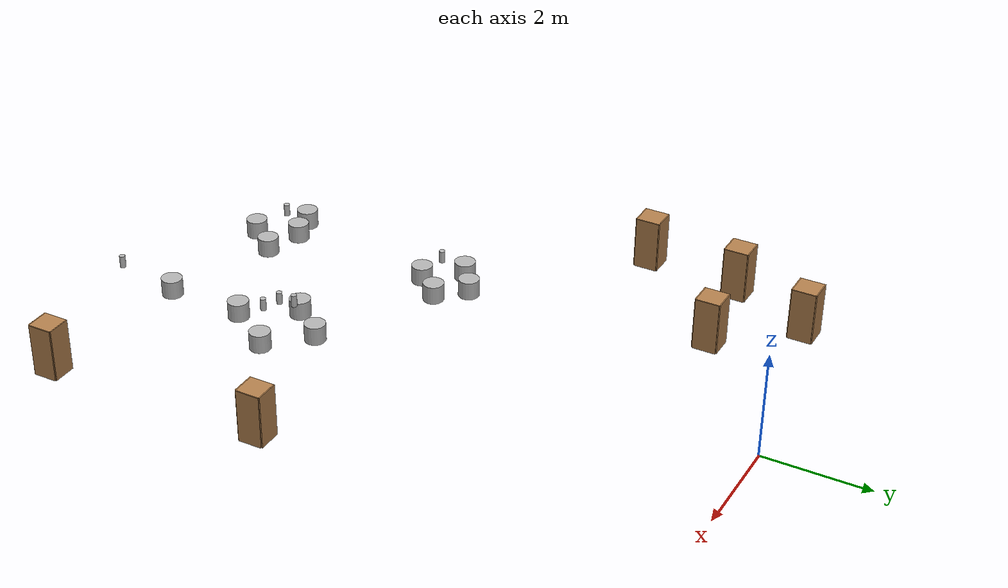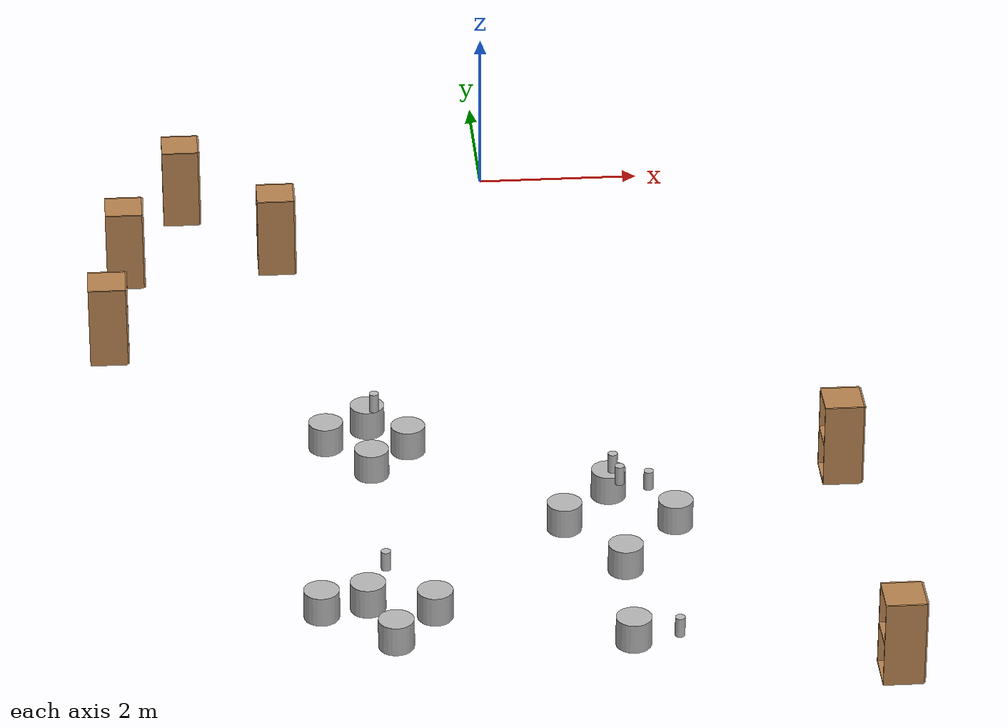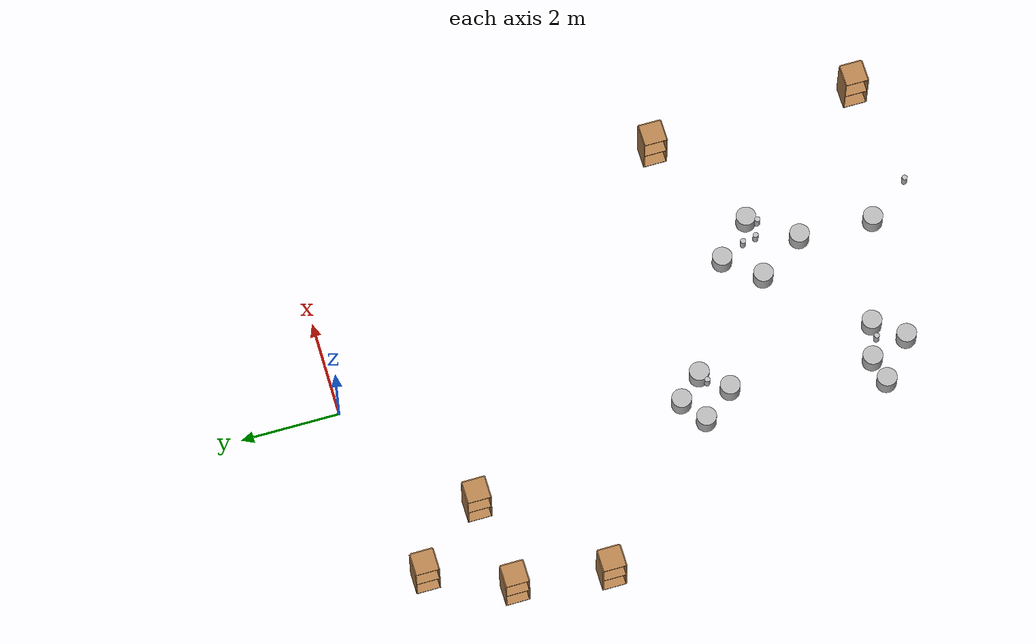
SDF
<sdf version="1.9">
 <world name="world_restaurant">
  <model name="beer">
   <link name="link">
    <pose>0 0 0.115 0 -0 0</pose>
    <inertial>
     <mass>0.39000000000000001</mass>
     <inertia>
      <ixx>0.00058</ixx>
      <ixy>0</ixy>
      <ixz>0</ixz>
      <iyy>0.00058</iyy>
      <iyz>0</iyz>
      <izz>0.00019000000000000001</izz>
     </inertia>
    </inertial>
    <collision name="collision">
     <geometry><cylinder><radius>0.055</radius><length>0.23000000000000001</length></cylinder></geometry>
    </collision>
    <visual name="visual">
     <geometry><cylinder><radius>0.055</radius><length>0.23000000000000001</length></cylinder></geometry>
     <material>
      <script>
       <uri>file:///home/joan/ros2_ws/install/turtlebot3/share/turtlebot3/models/worlds/model://beer/materials/scripts</uri>
       <uri>model://beer/materials/textures</uri>
       <name>Beer/Diffuse</name>
      </script>
     </material>
    </visual>
   </link>
   <pose>-1.8 -10.5005 0.775 0 0 -7.8e-05</pose>
   <static>false</static>
  </model>
  <model name="cylinder">
   <pose>-1.8 -6.5 0.364799 0 -0 0.0003</pose>
   <link name="cylinder_link">
    <inertial>
     <inertia>
      <ixx>0.14580000000000001</ixx>
      <ixy>0</ixy>
      <ixz>0</ixz>
      <iyy>0.14580000000000001</iyy>
      <iyz>0</iyz>
      <izz>0.125</izz>
     </inertia>
     <mass>1</mass>
    </inertial>
    <collision name="cylinder_collision">
     <geometry>
      <cylinder><radius>0.20000000000000001</radius><length>0.34999999999999998</length></cylinder>
     </geometry>
    </collision>
    <visual name="cylinder_visual">
     <geometry>
      <cylinder><radius>0.20000000000000001</radius><length>0.34999999999999998</length></cylinder>
     </geometry>
     <material>
      <ambient>0.3 0.3 0.3 1</ambient>
      <diffuse>0.7 0.7 0.7 1</diffuse>
      <specular>1 1 1 1</specular>
     </material>
    </visual>
   </link>
   <static>false</static>
  </model>
  <model name="cylinder_1">
   <pose>-1.35 -7 0.364799 0 -0 0.0003</pose>
   <link name="cylinder_link">
    <inertial>
     <inertia>
      <ixx>0.14580000000000001</ixx>
      <ixy>0</ixy>
      <ixz>0</ixz>
      <iyy>0.14580000000000001</iyy>
      <iyz>0</iyz>
      <izz>0.125</izz>
     </inertia>
     <mass>1</mass>
    </inertial>
    <collision name="cylinder_collision">
     <geometry>
      <cylinder><radius>0.20000000000000001</radius><length>0.34999999999999998</length></cylinder>
     </geometry>
    </collision>
    <visual name="cylinder_visual">
     <geometry>
      <cylinder><radius>0.20000000000000001</radius><length>0.34999999999999998</length></cylinder>
     </geometry>
     <material>
      <ambient>0.3 0.3 0.3 1</ambient>
      <diffuse>0.7 0.7 0.7 1</diffuse>
      <specular>1 1 1 1</specular>
     </material>
    </visual>
   </link>
   <static>false</static>
  </model>
  <model name="cylinder_1_1">
   <pose>-1.9971 -10.3842 0.364799 0 -0 0.034565</pose>
   <link name="cylinder_link">
    <inertial>
     <inertia>
      <ixx>0.14580000000000001</ixx>
      <ixy>0</ixy>
      <ixz>0</ixz>
      <iyy>0.14580000000000001</iyy>
      <iyz>0</iyz>
      <izz>0.125</izz>
     </inertia>
     <mass>1</mass>
    </inertial>
    <collision name="cylinder_collision">
     <geometry>
      <cylinder><radius>0.20000000000000001</radius><length>0.34999999999999998</length></cylinder>
     </geometry>
    </collision>
    <visual name="cylinder_visual">
     <geometry>
      <cylinder><radius>0.20000000000000001</radius><length>0.34999999999999998</length></cylinder>
     </geometry>
     <material>
      <ambient>0.3 0.3 0.3 1</ambient>
      <diffuse>0.7 0.7 0.7 1</diffuse>
      <specular>1 1 1 1</specular>
     </material>
    </visual>
   </link>
   <static>false</static>
  </model>
  <model name="cylinder_1_1_1">
   <pose>-1.8 -7.5 0.364799 0 -0 0.0003</pose>
   <link name="cylinder_link">
    <inertial>
     <inertia>
      <ixx>0.14580000000000001</ixx>
      <ixy>0</ixy>
      <ixz>0</ixz>
      <iyy>0.14580000000000001</iyy>
      <iyz>0</iyz>
      <izz>0.125</izz>
     </inertia>
     <mass>1</mass>
    </inertial>
    <collision name="cylinder_collision">
     <geometry>
      <cylinder><radius>0.20000000000000001</radius><length>0.34999999999999998</length></cylinder>
     </geometry>
    </collision>
    <visual name="cylinder_visual">
     <geometry>
      <cylinder><radius>0.20000000000000001</radius><length>0.34999999999999998</length></cylinder>
     </geometry>
     <material>
      <ambient>0.3 0.3 0.3 1</ambient>
      <diffuse>0.7 0.7 0.7 1</diffuse>
      <specular>1 1 1 1</specular>
     </material>
    </visual>
   </link>
   <static>false</static>
  </model>
  <model name="cylinder_1_1_2">
   <pose>-2.3 -6.8583 0.364799 0 -0 0.0003</pose>
   <link name="cylinder_link">
    <inertial>
     <inertia>
      <ixx>0.14580000000000001</ixx>
      <ixy>0</ixy>
      <ixz>0</ixz>
      <iyy>0.14580000000000001</iyy>
      <iyz>0</iyz>
      <izz>0.125</izz>
     </inertia>
     <mass>1</mass>
    </inertial>
    <collision name="cylinder_collision">
     <geometry>
      <cylinder><radius>0.20000000000000001</radius><length>0.34999999999999998</length></cylinder>
     </geometry>
    </collision>
    <visual name="cylinder_visual">
     <geometry>
      <cylinder><radius>0.20000000000000001</radius><length>0.34999999999999998</length></cylinder>
     </geometry>
     <material>
      <ambient>0.3 0.3 0.3 1</ambient>
      <diffuse>0.7 0.7 0.7 1</diffuse>
      <specular>1 1 1 1</specular>
     </material>
    </visual>
   </link>
   <static>false</static>
  </model>
  <model name="beer_1">
   <link name="link">
    <pose>0 0 0.115 0 -0 0</pose>
    <inertial>
     <mass>0.39000000000000001</mass>
     <inertia>
      <ixx>0.00058</ixx>
      <ixy>0</ixy>
      <ixz>0</ixz>
      <iyy>0.00058</iyy>
      <iyz>0</iyz>
      <izz>0.00019000000000000001</izz>
     </inertia>
    </inertial>
    <collision name="collision">
     <geometry><cylinder><radius>0.055</radius><length>0.23000000000000001</length></cylinder></geometry>
    </collision>
    <visual name="visual">
     <geometry><cylinder><radius>0.055</radius><length>0.23000000000000001</length></cylinder></geometry>
     <material>
      <script>
       <uri>file:///home/joan/ros2_ws/install/turtlebot3/share/turtlebot3/models/worlds/model://beer/materials/scripts</uri>
       <uri>model://beer/materials/textures</uri>
       <name>Beer/Diffuse</name>
      </script>
     </material>
    </visual>
   </link>
   <pose>-1.74324 -7.03446 0.775 0 -0 -7.8e-05</pose>
   <static>false</static>
  </model>
  <model name="beer_2">
   <link name="link">
    <pose>0 0 0.115 0 -0 0</pose>
    <inertial>
     <mass>0.39000000000000001</mass>
     <inertia>
      <ixx>0.00058</ixx>
      <ixy>0</ixy>
      <ixz>0</ixz>
      <iyy>0.00058</iyy>
      <iyz>0</iyz>
      <izz>0.00019000000000000001</izz>
     </inertia>
    </inertial>
    <collision name="collision">
     <geometry><cylinder><radius>0.055</radius><length>0.23000000000000001</length></cylinder></geometry>
    </collision>
    <visual name="visual">
     <geometry><cylinder><radius>0.055</radius><length>0.23000000000000001</length></cylinder></geometry>
     <material>
      <script>
       <uri>file:///home/joan/ros2_ws/install/turtlebot3/share/turtlebot3/models/worlds/model://beer/materials/scripts</uri>
       <uri>model://beer/materials/textures</uri>
       <name>Beer/Diffuse</name>
      </script>
     </material>
    </visual>
   </link>
   <pose>0.943448 -8.86355 0.775 0 0 -7.8e-05</pose>
   <static>false</static>
  </model>
  <model name="beer_1_1">
   <link name="link">
    <pose>0 0 0.115 0 -0 0</pose>
    <inertial>
     <mass>0.39000000000000001</mass>
     <inertia>
      <ixx>0.00058</ixx>
      <ixy>0</ixy>
      <ixz>0</ixz>
      <iyy>0.00058</iyy>
      <iyz>0</iyz>
      <izz>0.00019000000000000001</izz>
     </inertia>
    </inertial>
    <collision name="collision">
     <geometry><cylinder><radius>0.055</radius><length>0.23000000000000001</length></cylinder></geometry>
    </collision>
    <visual name="visual">
     <geometry><cylinder><radius>0.055</radius><length>0.23000000000000001</length></cylinder></geometry>
     <material>
      <script>
       <uri>file:///home/joan/ros2_ws/install/turtlebot3/share/turtlebot3/models/worlds/model://beer/materials/scripts</uri>
       <uri>model://beer/materials/textures</uri>
       <name>Beer/Diffuse</name>
      </script>
     </material>
    </visual>
   </link>
   <pose>0.889987 -8.58647 0.775 -0 -0 -7.8e-05</pose>
   <static>false</static>
  </model>
  <model name="beer_1_2">
   <link name="link">
    <pose>0 0 0.115 0 -0 0</pose>
    <inertial>
     <mass>0.39000000000000001</mass>
     <inertia>
      <ixx>0.00058</ixx>
      <ixy>0</ixy>
      <ixz>0</ixz>
      <iyy>0.00058</iyy>
      <iyz>0</iyz>
      <izz>0.00019000000000000001</izz>
     </inertia>
    </inertial>
    <collision name="collision">
     <geometry><cylinder><radius>0.055</radius><length>0.23000000000000001</length></cylinder></geometry>
    </collision>
    <visual name="visual">
     <geometry><cylinder><radius>0.055</radius><length>0.23000000000000001</length></cylinder></geometry>
     <material>
      <script>
       <uri>file:///home/joan/ros2_ws/install/turtlebot3/share/turtlebot3/models/worlds/model://beer/materials/scripts</uri>
       <uri>model://beer/materials/textures</uri>
       <name>Beer/Diffuse</name>
      </script>
     </material>
    </visual>
   </link>
   <pose>1.26044 -8.99729 0.775 0 0 -7.8e-05</pose>
   <static>false</static>
  </model>
  <model name="beer_1_4">
   <link name="link">
    <pose>0 0 0.115 0 -0 0</pose>
    <inertial>
     <mass>0.39000000000000001</mass>
     <inertia>
      <ixx>0.00058</ixx>
      <ixy>0</ixy>
      <ixz>0</ixz>
      <iyy>0.00058</iyy>
      <iyz>0</iyz>
      <izz>0.00019000000000000001</izz>
     </inertia>
    </inertial>
    <collision name="collision">
     <geometry><cylinder><radius>0.055</radius><length>0.23000000000000001</length></cylinder></geometry>
    </collision>
    <visual name="visual">
     <geometry><cylinder><radius>0.055</radius><length>0.23000000000000001</length></cylinder></geometry>
     <material>
      <script>
       <uri>file:///home/joan/ros2_ws/install/turtlebot3/share/turtlebot3/models/worlds/model://beer/materials/scripts</uri>
       <uri>model://beer/materials/textures</uri>
       <name>Beer/Diffuse</name>
      </script>
     </material>
    </visual>
   </link>
   <pose>1.29815 -12.0805 0.775 0 0 -7.8e-05</pose>
   <static>false</static>
  </model>
  <model name="cylinder_1_2">
   <pose>0.886542 -8.16521 0.364799 0 -0 0.0003</pose>
   <link name="cylinder_link">
    <inertial>
     <inertia>
      <ixx>0.14580000000000001</ixx>
      <ixy>0</ixy>
      <ixz>0</ixz>
      <iyy>0.14580000000000001</iyy>
      <iyz>0</iyz>
      <izz>0.125</izz>
     </inertia>
     <mass>1</mass>
    </inertial>
    <collision name="cylinder_collision">
     <geometry>
      <cylinder><radius>0.20000000000000001</radius><length>0.34999999999999998</length></cylinder>
     </geometry>
    </collision>
    <visual name="cylinder_visual">
     <geometry>
      <cylinder><radius>0.20000000000000001</radius><length>0.34999999999999998</length></cylinder>
     </geometry>
     <material>
      <ambient>0.3 0.3 0.3 1</ambient>
      <diffuse>0.7 0.7 0.7 1</diffuse>
      <specular>1 1 1 1</specular>
     </material>
    </visual>
   </link>
   <static>false</static>
  </model>
  <model name="cylinder_1_3">
   <pose>0.32062 -8.84854 0.364799 0 -0 0.0003</pose>
   <link name="cylinder_link">
    <inertial>
     <inertia>
      <ixx>0.14580000000000001</ixx>
      <ixy>0</ixy>
      <ixz>0</ixz>
      <iyy>0.14580000000000001</iyy>
      <iyz>0</iyz>
      <izz>0.125</izz>
     </inertia>
     <mass>1</mass>
    </inertial>
    <collision name="cylinder_collision">
     <geometry>
      <cylinder><radius>0.20000000000000001</radius><length>0.34999999999999998</length></cylinder>
     </geometry>
    </collision>
    <visual name="cylinder_visual">
     <geometry>
      <cylinder><radius>0.20000000000000001</radius><length>0.34999999999999998</length></cylinder>
     </geometry>
     <material>
      <ambient>0.3 0.3 0.3 1</ambient>
      <diffuse>0.7 0.7 0.7 1</diffuse>
      <specular>1 1 1 1</specular>
     </material>
    </visual>
   </link>
   <static>false</static>
  </model>
  <model name="cylinder_1_4">
   <pose>0.933209 -9.78972 0.364799 0 -0 0.0003</pose>
   <link name="cylinder_link">
    <inertial>
     <inertia>
      <ixx>0.14580000000000001</ixx>
      <ixy>0</ixy>
      <ixz>0</ixz>
      <iyy>0.14580000000000001</iyy>
      <iyz>0</iyz>
      <izz>0.125</izz>
     </inertia>
     <mass>1</mass>
    </inertial>
    <collision name="cylinder_collision">
     <geometry>
      <cylinder><radius>0.20000000000000001</radius><length>0.34999999999999998</length></cylinder>
     </geometry>
    </collision>
    <visual name="cylinder_visual">
     <geometry>
      <cylinder><radius>0.20000000000000001</radius><length>0.34999999999999998</length></cylinder>
     </geometry>
     <material>
      <ambient>0.3 0.3 0.3 1</ambient>
      <diffuse>0.7 0.7 0.7 1</diffuse>
      <specular>1 1 1 1</specular>
     </material>
    </visual>
   </link>
   <static>false</static>
  </model>
  <model name="cylinder_1_5">
   <pose>1.58796 -8.87831 0.364799 0 -0 0.0003</pose>
   <link name="cylinder_link">
    <inertial>
     <inertia>
      <ixx>0.14580000000000001</ixx>
      <ixy>0</ixy>
      <ixz>0</ixz>
      <iyy>0.14580000000000001</iyy>
      <iyz>0</iyz>
      <izz>0.125</izz>
     </inertia>
     <mass>1</mass>
    </inertial>
    <collision name="cylinder_collision">
     <geometry>
      <cylinder><radius>0.20000000000000001</radius><length>0.34999999999999998</length></cylinder>
     </geometry>
    </collision>
    <visual name="cylinder_visual">
     <geometry>
      <cylinder><radius>0.20000000000000001</radius><length>0.34999999999999998</length></cylinder>
     </geometry>
     <material>
      <ambient>0.3 0.3 0.3 1</ambient>
      <diffuse>0.7 0.7 0.7 1</diffuse>
      <specular>1 1 1 1</specular>
     </material>
    </visual>
   </link>
   <static>false</static>
  </model>
  <model name="cylinder_1_6">
   <pose>0.877834 -11.3115 0.364799 0 -0 0.0003</pose>
   <link name="cylinder_link">
    <inertial>
     <inertia>
      <ixx>0.14580000000000001</ixx>
      <ixy>0</ixy>
      <ixz>0</ixz>
      <iyy>0.14580000000000001</iyy>
      <iyz>0</iyz>
      <izz>0.125</izz>
     </inertia>
     <mass>1</mass>
    </inertial>
    <collision name="cylinder_collision">
     <geometry>
      <cylinder><radius>0.20000000000000001</radius><length>0.34999999999999998</length></cylinder>
     </geometry>
    </collision>
    <visual name="cylinder_visual">
     <geometry>
      <cylinder><radius>0.20000000000000001</radius><length>0.34999999999999998</length></cylinder>
     </geometry>
     <material>
      <ambient>0.3 0.3 0.3 1</ambient>
      <diffuse>0.7 0.7 0.7 1</diffuse>
      <specular>1 1 1 1</specular>
     </material>
    </visual>
   </link>
   <static>false</static>
  </model>
  <model name="cylinder_1_14">
   <pose>-1.26283 -10.602 0.364799 0 -0 0.0003</pose>
   <link name="cylinder_link">
    <inertial>
     <inertia>
      <ixx>0.14580000000000001</ixx>
      <ixy>0</ixy>
      <ixz>0</ixz>
      <iyy>0.14580000000000001</iyy>
      <iyz>0</iyz>
      <izz>0.125</izz>
     </inertia>
     <mass>1</mass>
    </inertial>
    <collision name="cylinder_collision">
     <geometry>
      <cylinder><radius>0.20000000000000001</radius><length>0.34999999999999998</length></cylinder>
     </geometry>
    </collision>
    <visual name="cylinder_visual">
     <geometry>
      <cylinder><radius>0.20000000000000001</radius><length>0.34999999999999998</length></cylinder>
     </geometry>
     <material>
      <ambient>0.3 0.3 0.3 1</ambient>
      <diffuse>0.7 0.7 0.7 1</diffuse>
      <specular>1 1 1 1</specular>
     </material>
    </visual>
   </link>
   <static>false</static>
  </model>
  <model name="cylinder_1_15">
   <pose>-1.72796 -11.1717 0.364799 0 -0 0.0003</pose>
   <link name="cylinder_link">
    <inertial>
     <inertia>
      <ixx>0.14580000000000001</ixx>
      <ixy>0</ixy>
      <ixz>0</ixz>
      <iyy>0.14580000000000001</iyy>
      <iyz>0</iyz>
      <izz>0.125</izz>
     </inertia>
     <mass>1</mass>
    </inertial>
    <collision name="cylinder_collision">
     <geometry>
      <cylinder><radius>0.20000000000000001</radius><length>0.34999999999999998</length></cylinder>
     </geometry>
    </collision>
    <visual name="cylinder_visual">
     <geometry>
      <cylinder><radius>0.20000000000000001</radius><length>0.34999999999999998</length></cylinder>
     </geometry>
     <material>
      <ambient>0.3 0.3 0.3 1</ambient>
      <diffuse>0.7 0.7 0.7 1</diffuse>
      <specular>1 1 1 1</specular>
     </material>
    </visual>
   </link>
   <static>false</static>
  </model>
  <model name="cylinder_1_16">
   <pose>-2.51816 -10.5117 0.364799 0 -0 0.0003</pose>
   <link name="cylinder_link">
    <inertial>
     <inertia>
      <ixx>0.14580000000000001</ixx>
      <ixy>0</ixy>
      <ixz>0</ixz>
      <iyy>0.14580000000000001</iyy>
      <iyz>0</iyz>
      <izz>0.125</izz>
     </inertia>
     <mass>1</mass>
    </inertial>
    <collision name="cylinder_collision">
     <geometry>
      <cylinder><radius>0.20000000000000001</radius><length>0.34999999999999998</length></cylinder>
     </geometry>
    </collision>
    <visual name="cylinder_visual">
     <geometry>
      <cylinder><radius>0.20000000000000001</radius><length>0.34999999999999998</length></cylinder>
     </geometry>
     <material>
      <ambient>0.3 0.3 0.3 1</ambient>
      <diffuse>0.7 0.7 0.7 1</diffuse>
      <specular>1 1 1 1</specular>
     </material>
    </visual>
   </link>
   <static>false</static>
  </model>
  <model name="cabinet_1">
   <static>true</static>
   <link name="cabinet_bottom_plate">
    <inertial>
     <pose>0 0 -1 0 0 0</pose>
     <inertia>
      <ixx>2.0499999999999998</ixx>
      <ixy>0</ixy>
      <ixz>0</ixz>
      <iyy>2.0499999999999998</iyy>
      <iyz>0</iyz>
      <izz>2.0499999999999998</izz>
     </inertia>
     <mass>25</mass>
    </inertial>
    <collision name="cabinet_bottom_plate_geom">
     <pose>0 0 0.010000 0 0 0</pose>
     <geometry><box><size>0.45 0.45 0.02</size></box></geometry>
    </collision>
    <visual name="cabinet_bottom_plate_geom_visual">
     <pose>0 0 0.010000 0 0 0</pose>
     <geometry><box><size>0.45 0.45 0.02</size></box></geometry>
     <material>
      <script><uri>file://media/materials/scripts/gazebo.material</uri><name>Gazebo/Wood</name></script>
     </material>
    </visual>
    <collision name="cabinet_bottom_plate_geom_cabinet_back_plate">
     <pose>0.235000 0 0.510000 0 0 0</pose>
     <geometry><box><size>0.02 0.45 1.02</size></box></geometry>
    </collision>
    <visual name="cabinet_bottom_plate_geom_cabinet_back_plate_visual">
     <pose>0.235000 0 0.510000 0 0 0</pose>
     <geometry><box><size>0.02 0.45 1.02</size></box></geometry>
     <material>
      <script><uri>file://media/materials/scripts/gazebo.material</uri><name>Gazebo/Wood</name></script>
     </material>
    </visual>
    <collision name="cabinet_bottom_plate_geom_cabinet_left_plate">
     <pose>0 0.235000 0.510000 0 0 0</pose>
     <geometry><box><size>0.45 0.02 1.02</size></box></geometry>
    </collision>
    <visual name="cabinet_bottom_plate_geom_cabinet_left_plate_visual">
     <pose>0 0.235000 0.510000 0 0 0</pose>
     <geometry><box><size>0.45 0.02 1.02</size></box></geometry>
     <material>
      <script><uri>file://media/materials/scripts/gazebo.material</uri><name>Gazebo/Wood</name></script>
     </material>
    </visual>
    <collision name="cabinet_bottom_plate_geom_cabinet_middle_plate">
     <pose>0 0 0.510000 0 0 0</pose>
     <geometry><box><size>0.45 0.45 0.02</size></box></geometry>
    </collision>
    <visual name="cabinet_bottom_plate_geom_cabinet_middle_plate_visual">
     <pose>0 0 0.510000 0 0 0</pose>
     <geometry><box><size>0.45 0.45 0.02</size></box></geometry>
     <material>
      <script><uri>file://media/materials/scripts/gazebo.material</uri><name>Gazebo/Wood</name></script>
     </material>
    </visual>
    <collision name="cabinet_bottom_plate_geom_cabinet_right_plate">
     <pose>0 -0.235000 0.510000 0 0 0</pose>
     <geometry><box><size>0.45 0.02 1.02</size></box></geometry>
    </collision>
    <visual name="cabinet_bottom_plate_geom_cabinet_right_plate_visual">
     <pose>0 -0.235000 0.510000 0 0 0</pose>
     <geometry><box><size>0.45 0.02 1.02</size></box></geometry>
     <material>
      <script><uri>file://media/materials/scripts/gazebo.material</uri><name>Gazebo/Wood</name></script>
     </material>
    </visual>
    <collision name="cabinet_bottom_plate_geom_cabinet_top_plate">
     <pose>0 0 1.010000 0 0 0</pose>
     <geometry><box><size>0.45 0.45 0.02</size></box></geometry>
    </collision>
    <visual name="cabinet_bottom_plate_geom_cabinet_top_plate_visual">
     <pose>0 0 1.010000 0 0 0</pose>
     <geometry><box><size>0.45 0.45 0.02</size></box></geometry>
     <material>
      <script><uri>file://media/materials/scripts/gazebo.material</uri><name>Gazebo/Wood</name></script>
     </material>
    </visual>
   </link>
   <pose>3.65164 -7.55244 0 0 -0 0</pose>
  </model>
  <model name="cabinet_2">
   <static>true</static>
   <link name="cabinet_bottom_plate">
    <inertial>
     <pose>0 0 -1 0 0 0</pose>
     <inertia>
      <ixx>2.0499999999999998</ixx>
      <ixy>0</ixy>
      <ixz>0</ixz>
      <iyy>2.0499999999999998</iyy>
      <iyz>0</iyz>
      <izz>2.0499999999999998</izz>
     </inertia>
     <mass>25</mass>
    </inertial>
    <collision name="cabinet_bottom_plate_geom">
     <pose>0 0 0.010000 0 0 0</pose>
     <geometry><box><size>0.45 0.45 0.02</size></box></geometry>
    </collision>
    <visual name="cabinet_bottom_plate_geom_visual">
     <pose>0 0 0.010000 0 0 0</pose>
     <geometry><box><size>0.45 0.45 0.02</size></box></geometry>
     <material>
      <script><uri>file://media/materials/scripts/gazebo.material</uri><name>Gazebo/Wood</name></script>
     </material>
    </visual>
    <collision name="cabinet_bottom_plate_geom_cabinet_back_plate">
     <pose>0.235000 0 0.510000 0 0 0</pose>
     <geometry><box><size>0.02 0.45 1.02</size></box></geometry>
    </collision>
    <visual name="cabinet_bottom_plate_geom_cabinet_back_plate_visual">
     <pose>0.235000 0 0.510000 0 0 0</pose>
     <geometry><box><size>0.02 0.45 1.02</size></box></geometry>
     <material>
      <script><uri>file://media/materials/scripts/gazebo.material</uri><name>Gazebo/Wood</name></script>
     </material>
    </visual>
    <collision name="cabinet_bottom_plate_geom_cabinet_left_plate">
     <pose>0 0.235000 0.510000 0 0 0</pose>
     <geometry><box><size>0.45 0.02 1.02</size></box></geometry>
    </collision>
    <visual name="cabinet_bottom_plate_geom_cabinet_left_plate_visual">
     <pose>0 0.235000 0.510000 0 0 0</pose>
     <geometry><box><size>0.45 0.02 1.02</size></box></geometry>
     <material>
      <script><uri>file://media/materials/scripts/gazebo.material</uri><name>Gazebo/Wood</name></script>
     </material>
    </visual>
    <collision name="cabinet_bottom_plate_geom_cabinet_middle_plate">
     <pose>0 0 0.510000 0 0 0</pose>
     <geometry><box><size>0.45 0.45 0.02</size></box></geometry>
    </collision>
    <visual name="cabinet_bottom_plate_geom_cabinet_middle_plate_visual">
     <pose>0 0 0.510000 0 0 0</pose>
     <geometry><box><size>0.45 0.45 0.02</size></box></geometry>
     <material>
      <script><uri>file://media/materials/scripts/gazebo.material</uri><name>Gazebo/Wood</name></script>
     </material>
    </visual>
    <collision name="cabinet_bottom_plate_geom_cabinet_right_plate">
     <pose>0 -0.235000 0.510000 0 0 0</pose>
     <geometry><box><size>0.45 0.02 1.02</size></box></geometry>
    </collision>
    <visual name="cabinet_bottom_plate_geom_cabinet_right_plate_visual">
     <pose>0 -0.235000 0.510000 0 0 0</pose>
     <geometry><box><size>0.45 0.02 1.02</size></box></geometry>
     <material>
      <script><uri>file://media/materials/scripts/gazebo.material</uri><name>Gazebo/Wood</name></script>
     </material>
    </visual>
    <collision name="cabinet_bottom_plate_geom_cabinet_top_plate">
     <pose>0 0 1.010000 0 0 0</pose>
     <geometry><box><size>0.45 0.45 0.02</size></box></geometry>
    </collision>
    <visual name="cabinet_bottom_plate_geom_cabinet_top_plate_visual">
     <pose>0 0 1.010000 0 0 0</pose>
     <geometry><box><size>0.45 0.45 0.02</size></box></geometry>
     <material>
      <script><uri>file://media/materials/scripts/gazebo.material</uri><name>Gazebo/Wood</name></script>
     </material>
    </visual>
   </link>
   <pose>3.77028 -11.8137 0 0 -0 0</pose>
  </model>
  <model name="cabinet_4">
   <static>true</static>
   <link name="cabinet_bottom_plate">
    <inertial>
     <pose>0 0 -1 0 0 0</pose>
     <inertia>
      <ixx>2.0499999999999998</ixx>
      <ixy>0</ixy>
      <ixz>0</ixz>
      <iyy>2.0499999999999998</iyy>
      <iyz>0</iyz>
      <izz>2.0499999999999998</izz>
     </inertia>
     <mass>25</mass>
    </inertial>
    <collision name="cabinet_bottom_plate_geom">
     <pose>0 0 0.010000 0 0 0</pose>
     <geometry><box><size>0.45 0.45 0.02</size></box></geometry>
    </collision>
    <visual name="cabinet_bottom_plate_geom_visual">
     <pose>0 0 0.010000 0 0 0</pose>
     <geometry><box><size>0.45 0.45 0.02</size></box></geometry>
     <material>
      <script><uri>file://media/materials/scripts/gazebo.material</uri><name>Gazebo/Wood</name></script>
     </material>
    </visual>
    <collision name="cabinet_bottom_plate_geom_cabinet_back_plate">
     <pose>0.235000 0 0.510000 0 0 0</pose>
     <geometry><box><size>0.02 0.45 1.02</size></box></geometry>
    </collision>
    <visual name="cabinet_bottom_plate_geom_cabinet_back_plate_visual">
     <pose>0.235000 0 0.510000 0 0 0</pose>
     <geometry><box><size>0.02 0.45 1.02</size></box></geometry>
     <material>
      <script><uri>file://media/materials/scripts/gazebo.material</uri><name>Gazebo/Wood</name></script>
     </material>
    </visual>
    <collision name="cabinet_bottom_plate_geom_cabinet_left_plate">
     <pose>0 0.235000 0.510000 0 0 0</pose>
     <geometry><box><size>0.45 0.02 1.02</size></box></geometry>
    </collision>
    <visual name="cabinet_bottom_plate_geom_cabinet_left_plate_visual">
     <pose>0 0.235000 0.510000 0 0 0</pose>
     <geometry><box><size>0.45 0.02 1.02</size></box></geometry>
     <material>
      <script><uri>file://media/materials/scripts/gazebo.material</uri><name>Gazebo/Wood</name></script>
     </material>
    </visual>
    <collision name="cabinet_bottom_plate_geom_cabinet_middle_plate">
     <pose>0 0 0.510000 0 0 0</pose>
     <geometry><box><size>0.45 0.45 0.02</size></box></geometry>
    </collision>
    <visual name="cabinet_bottom_plate_geom_cabinet_middle_plate_visual">
     <pose>0 0 0.510000 0 0 0</pose>
     <geometry><box><size>0.45 0.45 0.02</size></box></geometry>
     <material>
      <script><uri>file://media/materials/scripts/gazebo.material</uri><name>Gazebo/Wood</name></script>
     </material>
    </visual>
    <collision name="cabinet_bottom_plate_geom_cabinet_right_plate">
     <pose>0 -0.235000 0.510000 0 0 0</pose>
     <geometry><box><size>0.45 0.02 1.02</size></box></geometry>
    </collision>
    <visual name="cabinet_bottom_plate_geom_cabinet_right_plate_visual">
     <pose>0 -0.235000 0.510000 0 0 0</pose>
     <geometry><box><size>0.45 0.02 1.02</size></box></geometry>
     <material>
      <script><uri>file://media/materials/scripts/gazebo.material</uri><name>Gazebo/Wood</name></script>
     </material>
    </visual>
    <collision name="cabinet_bottom_plate_geom_cabinet_top_plate">
     <pose>0 0 1.010000 0 0 0</pose>
     <geometry><box><size>0.45 0.45 0.02</size></box></geometry>
    </collision>
    <visual name="cabinet_bottom_plate_geom_cabinet_top_plate_visual">
     <pose>0 0 1.010000 0 0 0</pose>
     <geometry><box><size>0.45 0.45 0.02</size></box></geometry>
     <material>
      <script><uri>file://media/materials/scripts/gazebo.material</uri><name>Gazebo/Wood</name></script>
     </material>
    </visual>
   </link>
   <pose>-4.80024 -4.16033 0 0 -0 0</pose>
  </model>
  <model name="cabinet_5">
   <static>true</static>
   <link name="cabinet_bottom_plate">
    <inertial>
     <pose>0 0 -1 0 0 0</pose>
     <inertia>
      <ixx>2.0499999999999998</ixx>
      <ixy>0</ixy>
      <ixz>0</ixz>
      <iyy>2.0499999999999998</iyy>
      <iyz>0</iyz>
      <izz>2.0499999999999998</izz>
     </inertia>
     <mass>25</mass>
    </inertial>
    <collision name="cabinet_bottom_plate_geom">
     <pose>0 0 0.010000 0 0 0</pose>
     <geometry><box><size>0.45 0.45 0.02</size></box></geometry>
    </collision>
    <visual name="cabinet_bottom_plate_geom_visual">
     <pose>0 0 0.010000 0 0 0</pose>
     <geometry><box><size>0.45 0.45 0.02</size></box></geometry>
     <material>
      <script><uri>file://media/materials/scripts/gazebo.material</uri><name>Gazebo/Wood</name></script>
     </material>
    </visual>
    <collision name="cabinet_bottom_plate_geom_cabinet_back_plate">
     <pose>0.235000 0 0.510000 0 0 0</pose>
     <geometry><box><size>0.02 0.45 1.02</size></box></geometry>
    </collision>
    <visual name="cabinet_bottom_plate_geom_cabinet_back_plate_visual">
     <pose>0.235000 0 0.510000 0 0 0</pose>
     <geometry><box><size>0.02 0.45 1.02</size></box></geometry>
     <material>
      <script><uri>file://media/materials/scripts/gazebo.material</uri><name>Gazebo/Wood</name></script>
     </material>
    </visual>
    <collision name="cabinet_bottom_plate_geom_cabinet_left_plate">
     <pose>0 0.235000 0.510000 0 0 0</pose>
     <geometry><box><size>0.45 0.02 1.02</size></box></geometry>
    </collision>
    <visual name="cabinet_bottom_plate_geom_cabinet_left_plate_visual">
     <pose>0 0.235000 0.510000 0 0 0</pose>
     <geometry><box><size>0.45 0.02 1.02</size></box></geometry>
     <material>
      <script><uri>file://media/materials/scripts/gazebo.material</uri><name>Gazebo/Wood</name></script>
     </material>
    </visual>
    <collision name="cabinet_bottom_plate_geom_cabinet_middle_plate">
     <pose>0 0 0.510000 0 0 0</pose>
     <geometry><box><size>0.45 0.45 0.02</size></box></geometry>
    </collision>
    <visual name="cabinet_bottom_plate_geom_cabinet_middle_plate_visual">
     <pose>0 0 0.510000 0 0 0</pose>
     <geometry><box><size>0.45 0.45 0.02</size></box></geometry>
     <material>
      <script><uri>file://media/materials/scripts/gazebo.material</uri><name>Gazebo/Wood</name></script>
     </material>
    </visual>
    <collision name="cabinet_bottom_plate_geom_cabinet_right_plate">
     <pose>0 -0.235000 0.510000 0 0 0</pose>
     <geometry><box><size>0.45 0.02 1.02</size></box></geometry>
    </collision>
    <visual name="cabinet_bottom_plate_geom_cabinet_right_plate_visual">
     <pose>0 -0.235000 0.510000 0 0 0</pose>
     <geometry><box><size>0.45 0.02 1.02</size></box></geometry>
     <material>
      <script><uri>file://media/materials/scripts/gazebo.material</uri><name>Gazebo/Wood</name></script>
     </material>
    </visual>
    <collision name="cabinet_bottom_plate_geom_cabinet_top_plate">
     <pose>0 0 1.010000 0 0 0</pose>
     <geometry><box><size>0.45 0.45 0.02</size></box></geometry>
    </collision>
    <visual name="cabinet_bottom_plate_geom_cabinet_top_plate_visual">
     <pose>0 0 1.010000 0 0 0</pose>
     <geometry><box><size>0.45 0.45 0.02</size></box></geometry>
     <material>
      <script><uri>file://media/materials/scripts/gazebo.material</uri><name>Gazebo/Wood</name></script>
     </material>
    </visual>
   </link>
   <pose>-4.57174 -2.27149 0 0 -0 0</pose>
  </model>
  <model name="cabinet_6">
   <static>true</static>
   <link name="cabinet_bottom_plate">
    <inertial>
     <pose>0 0 -1 0 0 0</pose>
     <inertia>
      <ixx>2.0499999999999998</ixx>
      <ixy>0</ixy>
      <ixz>0</ixz>
      <iyy>2.0499999999999998</iyy>
      <iyz>0</iyz>
      <izz>2.0499999999999998</izz>
     </inertia>
     <mass>25</mass>
    </inertial>
    <collision name="cabinet_bottom_plate_geom">
     <pose>0 0 0.010000 0 0 0</pose>
     <geometry><box><size>0.45 0.45 0.02</size></box></geometry>
    </collision>
    <visual name="cabinet_bottom_plate_geom_visual">
     <pose>0 0 0.010000 0 0 0</pose>
     <geometry><box><size>0.45 0.45 0.02</size></box></geometry>
     <material>
      <script><uri>file://media/materials/scripts/gazebo.material</uri><name>Gazebo/Wood</name></script>
     </material>
    </visual>
    <collision name="cabinet_bottom_plate_geom_cabinet_back_plate">
     <pose>0.235000 0 0.510000 0 0 0</pose>
     <geometry><box><size>0.02 0.45 1.02</size></box></geometry>
    </collision>
    <visual name="cabinet_bottom_plate_geom_cabinet_back_plate_visual">
     <pose>0.235000 0 0.510000 0 0 0</pose>
     <geometry><box><size>0.02 0.45 1.02</size></box></geometry>
     <material>
      <script><uri>file://media/materials/scripts/gazebo.material</uri><name>Gazebo/Wood</name></script>
     </material>
    </visual>
    <collision name="cabinet_bottom_plate_geom_cabinet_left_plate">
     <pose>0 0.235000 0.510000 0 0 0</pose>
     <geometry><box><size>0.45 0.02 1.02</size></box></geometry>
    </collision>
    <visual name="cabinet_bottom_plate_geom_cabinet_left_plate_visual">
     <pose>0 0.235000 0.510000 0 0 0</pose>
     <geometry><box><size>0.45 0.02 1.02</size></box></geometry>
     <material>
      <script><uri>file://media/materials/scripts/gazebo.material</uri><name>Gazebo/Wood</name></script>
     </material>
    </visual>
    <collision name="cabinet_bottom_plate_geom_cabinet_middle_plate">
     <pose>0 0 0.510000 0 0 0</pose>
     <geometry><box><size>0.45 0.45 0.02</size></box></geometry>
    </collision>
    <visual name="cabinet_bottom_plate_geom_cabinet_middle_plate_visual">
     <pose>0 0 0.510000 0 0 0</pose>
     <geometry><box><size>0.45 0.45 0.02</size></box></geometry>
     <material>
      <script><uri>file://media/materials/scripts/gazebo.material</uri><name>Gazebo/Wood</name></script>
     </material>
    </visual>
    <collision name="cabinet_bottom_plate_geom_cabinet_right_plate">
     <pose>0 -0.235000 0.510000 0 0 0</pose>
     <geometry><box><size>0.45 0.02 1.02</size></box></geometry>
    </collision>
    <visual name="cabinet_bottom_plate_geom_cabinet_right_plate_visual">
     <pose>0 -0.235000 0.510000 0 0 0</pose>
     <geometry><box><size>0.45 0.02 1.02</size></box></geometry>
     <material>
      <script><uri>file://media/materials/scripts/gazebo.material</uri><name>Gazebo/Wood</name></script>
     </material>
    </visual>
    <collision name="cabinet_bottom_plate_geom_cabinet_top_plate">
     <pose>0 0 1.010000 0 0 0</pose>
     <geometry><box><size>0.45 0.45 0.02</size></box></geometry>
    </collision>
    <visual name="cabinet_bottom_plate_geom_cabinet_top_plate_visual">
     <pose>0 0 1.010000 0 0 0</pose>
     <geometry><box><size>0.45 0.45 0.02</size></box></geometry>
     <material>
      <script><uri>file://media/materials/scripts/gazebo.material</uri><name>Gazebo/Wood</name></script>
     </material>
    </visual>
   </link>
   <pose>-3.84402 -0.67206 0 0 -0 0</pose>
  </model>
  <model name="cabinet_7">
   <static>true</static>
   <link name="cabinet_bottom_plate">
    <inertial>
     <pose>0 0 -1 0 0 0</pose>
     <inertia>
      <ixx>2.0499999999999998</ixx>
      <ixy>0</ixy>
      <ixz>0</ixz>
      <iyy>2.0499999999999998</iyy>
      <iyz>0</iyz>
      <izz>2.0499999999999998</izz>
     </inertia>
     <mass>25</mass>
    </inertial>
    <collision name="cabinet_bottom_plate_geom">
     <pose>0 0 0.010000 0 0 0</pose>
     <geometry><box><size>0.45 0.45 0.02</size></box></geometry>
    </collision>
    <visual name="cabinet_bottom_plate_geom_visual">
     <pose>0 0 0.010000 0 0 0</pose>
     <geometry><box><size>0.45 0.45 0.02</size></box></geometry>
     <material>
      <script><uri>file://media/materials/scripts/gazebo.material</uri><name>Gazebo/Wood</name></script>
     </material>
    </visual>
    <collision name="cabinet_bottom_plate_geom_cabinet_back_plate">
     <pose>0.235000 0 0.510000 0 0 0</pose>
     <geometry><box><size>0.02 0.45 1.02</size></box></geometry>
    </collision>
    <visual name="cabinet_bottom_plate_geom_cabinet_back_plate_visual">
     <pose>0.235000 0 0.510000 0 0 0</pose>
     <geometry><box><size>0.02 0.45 1.02</size></box></geometry>
     <material>
      <script><uri>file://media/materials/scripts/gazebo.material</uri><name>Gazebo/Wood</name></script>
     </material>
    </visual>
    <collision name="cabinet_bottom_plate_geom_cabinet_left_plate">
     <pose>0 0.235000 0.510000 0 0 0</pose>
     <geometry><box><size>0.45 0.02 1.02</size></box></geometry>
    </collision>
    <visual name="cabinet_bottom_plate_geom_cabinet_left_plate_visual">
     <pose>0 0.235000 0.510000 0 0 0</pose>
     <geometry><box><size>0.45 0.02 1.02</size></box></geometry>
     <material>
      <script><uri>file://media/materials/scripts/gazebo.material</uri><name>Gazebo/Wood</name></script>
     </material>
    </visual>
    <collision name="cabinet_bottom_plate_geom_cabinet_middle_plate">
     <pose>0 0 0.510000 0 0 0</pose>
     <geometry><box><size>0.45 0.45 0.02</size></box></geometry>
    </collision>
    <visual name="cabinet_bottom_plate_geom_cabinet_middle_plate_visual">
     <pose>0 0 0.510000 0 0 0</pose>
     <geometry><box><size>0.45 0.45 0.02</size></box></geometry>
     <material>
      <script><uri>file://media/materials/scripts/gazebo.material</uri><name>Gazebo/Wood</name></script>
     </material>
    </visual>
    <collision name="cabinet_bottom_plate_geom_cabinet_right_plate">
     <pose>0 -0.235000 0.510000 0 0 0</pose>
     <geometry><box><size>0.45 0.02 1.02</size></box></geometry>
    </collision>
    <visual name="cabinet_bottom_plate_geom_cabinet_right_plate_visual">
     <pose>0 -0.235000 0.510000 0 0 0</pose>
     <geometry><box><size>0.45 0.02 1.02</size></box></geometry>
     <material>
      <script><uri>file://media/materials/scripts/gazebo.material</uri><name>Gazebo/Wood</name></script>
     </material>
    </visual>
    <collision name="cabinet_bottom_plate_geom_cabinet_top_plate">
     <pose>0 0 1.010000 0 0 0</pose>
     <geometry><box><size>0.45 0.45 0.02</size></box></geometry>
    </collision>
    <visual name="cabinet_bottom_plate_geom_cabinet_top_plate_visual">
     <pose>0 0 1.010000 0 0 0</pose>
     <geometry><box><size>0.45 0.45 0.02</size></box></geometry>
     <material>
      <script><uri>file://media/materials/scripts/gazebo.material</uri><name>Gazebo/Wood</name></script>
     </material>
    </visual>
   </link>
   <pose>-2.69713 -2.04698 0 0 -0 0</pose>
  </model>
 </world>
</sdf>
